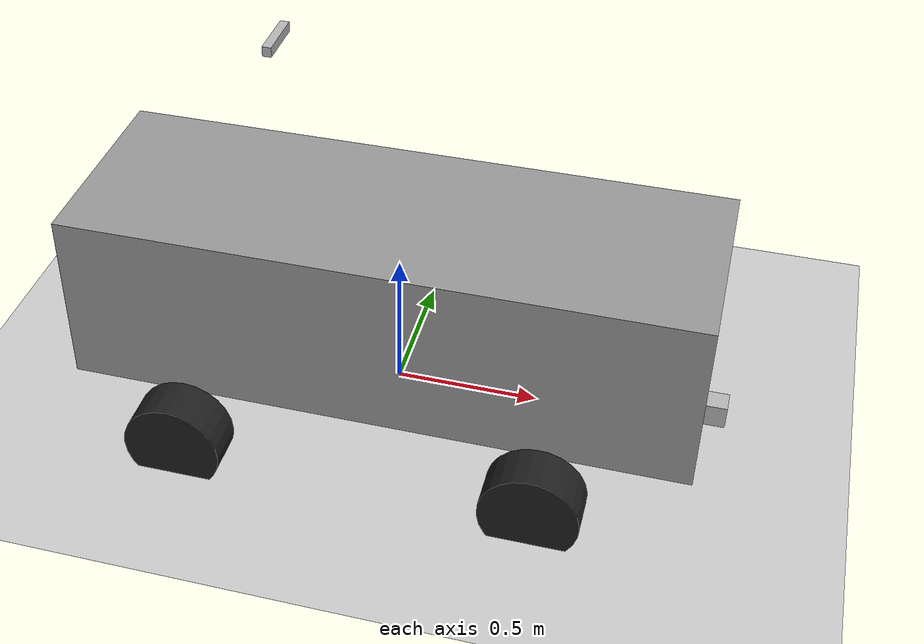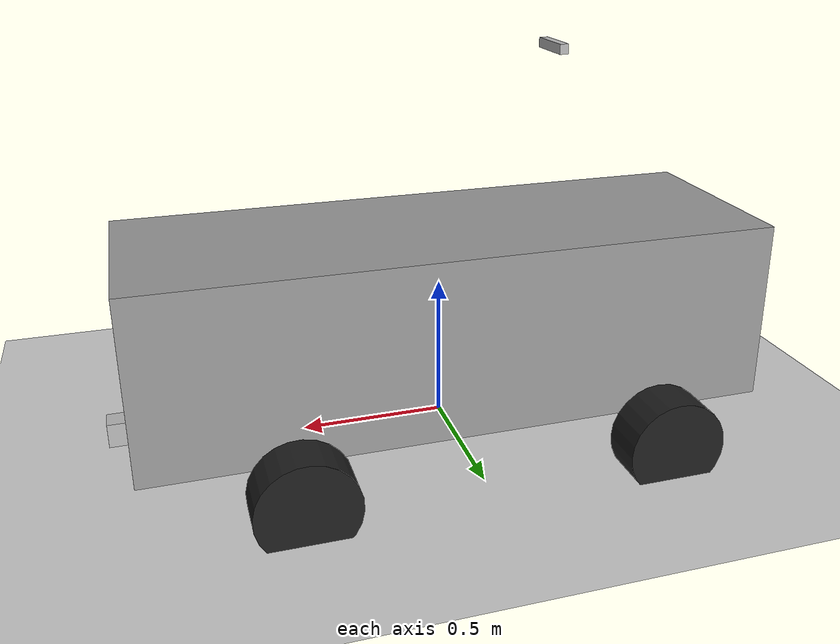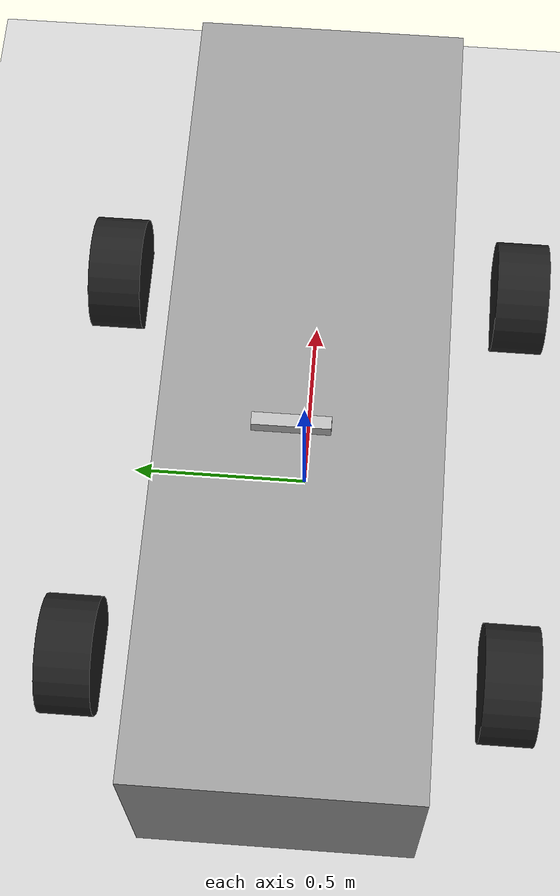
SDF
<?xml version="1.0" ?>
<sdf version="1.6">
  <world name="default">
    <!-- A global light source -->
    <include>
      <uri>model://sun</uri>
    </include>
    <!-- A ground plane -->
    <include>
      <uri>model://ground_plane</uri>
    </include>

    <!-- Specify the QEV2 model -->
    <model name="QEV2">
      <include>
        <uri>model://QEV2</uri>
	      <pose>0 0 0 0 0 0</pose>
      </include>

      <!-- Attach the plugin to this model -->
      <plugin name="qev2_drive_control" filename="/home/philly/catkin_ws/src/qut/qutms_autonomous/plugins/drive_plugin/build/libqev2_drive_plugin.so"/>
    </model>

  </world>
</sdf>

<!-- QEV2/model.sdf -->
<sdf version="1.6">
  <model name="QEV2">
    <link name="chassis">
      <pose>0 0 0.4 0 0 0</pose>
      <inertial>
        <mass>46</mass>
        <inertia>
          <ixx>3.5923125</ixx>
          <iyy>19.4891458333</iyy>
          <izz>20.0385583333</izz>
          <ixy>0</ixy>
          <ixz>0</ixz>
          <iyz>0</iyz>
        </inertia>
      </inertial>
      <self_collide>0</self_collide>
      <enable_wind>0</enable_wind>
      <kinematic>0</kinematic>
      <collision name="collision">
        <geometry>
          <box>
            <size>2.165 0.735 0.63</size>
          </box>
        </geometry>
        <surface>
          <friction>
            <ode>
              <mu>1</mu>
              <mu2>1</mu2>
              <fdir1>0 0 0</fdir1>
              <slip1>0</slip1>
              <slip2>0</slip2>
            </ode>
            <torsional>
              <coefficient>1</coefficient>
              <patch_radius>0</patch_radius>
              <surface_radius>0</surface_radius>
              <use_patch_radius>1</use_patch_radius>
              <ode>
                <slip>0</slip>
              </ode>
            </torsional>
          </friction>
          <bounce>
            <restitution_coefficient>0</restitution_coefficient>
            <threshold>1e+06</threshold>
          </bounce>
          <contact>
            <collide_without_contact>0</collide_without_contact>
            <collide_without_contact_bitmask>1</collide_without_contact_bitmask>
            <collide_bitmask>1</collide_bitmask>
            <ode>
              <soft_cfm>0</soft_cfm>
              <soft_erp>0.2</soft_erp>
              <kp>1e+13</kp>
              <kd>1</kd>
              <max_vel>0.01</max_vel>
              <min_depth>0</min_depth>
            </ode>
            <bullet>
              <split_impulse>1</split_impulse>
              <split_impulse_penetration_threshold>-0.01</split_impulse_penetration_threshold>
              <soft_cfm>0</soft_cfm>
              <soft_erp>0.2</soft_erp>
              <kp>1e+13</kp>
              <kd>1</kd>
            </bullet>
          </contact>
        </surface>
      </collision>
      <visual name="visual">
        <geometry>
          <box>
            <size>2.165 0.735 0.63</size>
          </box>
        </geometry>
        <material>
          <script>
            <uri>file://media/materials/scripts/gazebo.material</uri>
            <name>Gazebo/Grey</name>
          </script>
        </material>
        <transparency>0</transparency>
        <cast_shadows>1</cast_shadows>
      </visual>
    </link>
    <link name="wheel_front_right">
      <pose>0.6 -0.6 0.1 -1.5707963267948966 -0.08726646259971647 0</pose>
      <inertial>
        <mass>3</mass>
        <inertia>
          <ixx>0.0262499475</ixx>
          <iyy>0.0262499475</iyy>
          <izz>0.040887015</izz>
          <ixy>0</ixy>
          <ixz>0</ixz>
          <iyz>0</iyz>
        </inertia>
      </inertial>
      <self_collide>0</self_collide>
      <enable_wind>0</enable_wind>
      <kinematic>0</kinematic>
      <collision name="collision">
        <geometry>
          <cylinder>
            <radius>.1651</radius>
            <length>.1524</length>
          </cylinder>
        </geometry>
        <surface>
          <friction>
            <ode>
              <mu>1</mu>
              <mu2>1</mu2>
              <fdir1>0 0 0</fdir1>
              <slip1>0</slip1>
              <slip2>0</slip2>
            </ode>
            <torsional>
              <coefficient>1</coefficient>
              <patch_radius>0</patch_radius>
              <surface_radius>0</surface_radius>
              <use_patch_radius>1</use_patch_radius>
              <ode>
                <slip>0</slip>
              </ode>
            </torsional>
          </friction>
          <bounce>
            <restitution_coefficient>0</restitution_coefficient>
            <threshold>1e+06</threshold>
          </bounce>
          <contact>
            <collide_without_contact>0</collide_without_contact>
            <collide_without_contact_bitmask>1</collide_without_contact_bitmask>
            <collide_bitmask>1</collide_bitmask>
            <ode>
              <soft_cfm>0</soft_cfm>
              <soft_erp>0.2</soft_erp>
              <kp>1e+13</kp>
              <kd>1</kd>
              <max_vel>0.01</max_vel>
              <min_depth>0</min_depth>
            </ode>
            <bullet>
              <split_impulse>1</split_impulse>
              <split_impulse_penetration_threshold>-0.01</split_impulse_penetration_threshold>
              <soft_cfm>0</soft_cfm>
              <soft_erp>0.2</soft_erp>
              <kp>1e+13</kp>
              <kd>1</kd>
            </bullet>
          </contact>
        </surface>
      </collision>
      <visual name="visual">
        <geometry>
          <cylinder>
            <radius>.1651</radius>
            <length>.1524</length>
          </cylinder>
        </geometry>
        <material>
          <script>
            <uri>file://media/materials/scripts/gazebo.material</uri>
            <name>Gazebo/Black</name>
          </script>
        </material>
        <transparency>0</transparency>
        <cast_shadows>1</cast_shadows>
      </visual>
    </link>
    <link name="wheel_front_left">
      <pose>0.6 0.6 0.1 -1.5707963267948966 -0.08726646259971647 0</pose>
      <inertial>
        <mass>3</mass>
        <inertia>
          <ixx>0.0262499475</ixx>
          <iyy>0.0262499475</iyy>
          <izz>0.040887015</izz>
          <ixy>0</ixy>
          <ixz>0</ixz>
          <iyz>0</iyz>
        </inertia>
      </inertial>
      <collision name="collision">
        <geometry>
          <cylinder>
            <radius>.1651</radius>
            <length>.1524</length>
          </cylinder>
        </geometry>
      </collision>
      <visual name="visual">
        <geometry>
          <cylinder>
            <radius>.1651</radius>
            <length>.1524</length>
          </cylinder>
        </geometry>
        <material>
          <script>
            <uri>file://media/materials/scripts/gazebo.material</uri>
            <name>Gazebo/Black</name>
          </script>
        </material>
      </visual>
    </link>
    <link name="wheel_rear_right">
      <pose>-0.6 -0.6 0.1 -1.5707963267948966 0 0</pose>
      <inertial>
        <mass>3</mass>
        <inertia>
          <ixx>0.0262499475</ixx>
          <iyy>0.0262499475</iyy>
          <izz>0.040887015</izz>
          <ixy>0</ixy>
          <ixz>0</ixz>
          <iyz>0</iyz>
        </inertia>
      </inertial>
      <collision name="collision">
        <geometry>
          <cylinder>
            <radius>.1651</radius>
            <length>.1524</length>
          </cylinder>
        </geometry>
        <surface>
          <friction>
            <ode>
              <mu>1</mu>
              <mu2>1</mu2>
              <fdir1>0 0 0</fdir1>
              <slip1>0</slip1>
              <slip2>0</slip2>
            </ode>
            <torsional>
              <coefficient>1</coefficient>
              <patch_radius>0</patch_radius>
              <surface_radius>0</surface_radius>
              <use_patch_radius>1</use_patch_radius>
              <ode>
                <slip>0</slip>
              </ode>
            </torsional>
          </friction>
          <bounce>
            <restitution_coefficient>0</restitution_coefficient>
            <threshold>1e+06</threshold>
          </bounce>
          <contact>
            <collide_without_contact>0</collide_without_contact>
            <collide_without_contact_bitmask>1</collide_without_contact_bitmask>
            <collide_bitmask>1</collide_bitmask>
            <ode>
              <soft_cfm>0</soft_cfm>
              <soft_erp>0.2</soft_erp>
              <kp>1e+13</kp>
              <kd>1</kd>
              <max_vel>0.01</max_vel>
              <min_depth>0</min_depth>
            </ode>
            <bullet>
              <split_impulse>1</split_impulse>
              <split_impulse_penetration_threshold>-0.01</split_impulse_penetration_threshold>
              <soft_cfm>0</soft_cfm>
              <soft_erp>0.2</soft_erp>
              <kp>1e+13</kp>
              <kd>1</kd>
            </bullet>
          </contact>
        </surface>
      </collision>
      <visual name="visual">
        <geometry>
          <cylinder>
            <radius>.1651</radius>
            <length>.1524</length>
          </cylinder>
        </geometry>
        <material>
          <script>
            <uri>file://media/materials/scripts/gazebo.material</uri>
            <name>Gazebo/Black</name>
          </script>
        </material>
      </visual>
    </link>
    <link name="wheel_rear_left">
      <pose>-0.6 0.6 0.1 -1.5707963267948966 0 0</pose>
      <inertial>
        <mass>3</mass>
        <inertia>
          <ixx>0.0262499475</ixx>
          <iyy>0.0262499475</iyy>
          <izz>0.040887015</izz>
          <ixy>0</ixy>
          <ixz>0</ixz>
          <iyz>0</iyz>
        </inertia>
      </inertial>
      <collision name="collision">
        <geometry>
          <cylinder>
            <radius>.1651</radius>
            <length>.1524</length>
          </cylinder>
        </geometry>
      </collision>
      <visual name="visual">
        <geometry>
          <cylinder>
            <radius>.1651</radius>
            <length>.1524</length>
          </cylinder>
        </geometry>
        <material>
          <script>
            <uri>file://media/materials/scripts/gazebo.material</uri>
            <name>Gazebo/Black</name>
          </script>
        </material>
      </visual>
    </link>
    <link name="susp_front_right">
      <pose>0.6 -0.6 0.1 0 0 0</pose>
      <inertial>
        <mass>3</mass>
        <inertia>
          <ixx>0.0208333333333333</ixx>
          <iyy>0.0208333333333333</iyy>
          <izz>0.0208333333333333</izz>
          <ixy>0</ixy>
          <ixz>0</ixz>
          <iyz>0</iyz>
        </inertia>
      </inertial>
      <collision name="collision">
        <geometry>
          <box>
            <size>0.1 0.1 0.1</size>
          </box>
        </geometry>
      </collision>
      <visual name="visual">
        <geometry>
          <box>
            <size>0.1 0.1 0.1</size>
          </box>
        </geometry>
        <material>
          <script>
            <uri>file://media/materials/scripts/gazebo.material</uri>
            <name>Gazebo/Black</name>
          </script>
        </material>
      </visual>
    </link>
    <link name="susp_front_left">
      <pose>0.6 0.6 0.1 0 0 0</pose>
      <inertial>
        <mass>3</mass>
        <inertia>
          <ixx>0.0208333333333333</ixx>
          <iyy>0.0208333333333333</iyy>
          <izz>0.0208333333333333</izz>
          <ixy>0</ixy>
          <ixz>0</ixz>
          <iyz>0</iyz>
        </inertia>
      </inertial>
      <collision name="collision">
        <geometry>
          <box>
            <size>0.1 0.1 0.1</size>
          </box>
        </geometry>
      </collision>
      <visual name="visual">
        <geometry>
          <box>
            <size>0.1 0.1 0.1</size>
          </box>
        </geometry>
        <material>
          <script>
            <uri>file://media/materials/scripts/gazebo.material</uri>
            <name>Gazebo/Black</name>
          </script>
        </material>
      </visual>
    </link>
    <link name="susp_rear_left">
      <pose>-0.6 0.6 0.1 0 0 0</pose>
      <inertial>
        <mass>3</mass>
        <inertia>
          <ixx>0.0208333333333333</ixx>
          <iyy>0.0208333333333333</iyy>
          <izz>0.0208333333333333</izz>
          <ixy>0</ixy>
          <ixz>0</ixz>
          <iyz>0</iyz>
        </inertia>
      </inertial>
      <collision name="collision">
        <geometry>
          <box>
            <size>0.1 0.1 0.1</size>
          </box>
        </geometry>
      </collision>
      <visual name="visual">
        <geometry>
          <box>
            <size>0.1 0.1 0.1</size>
          </box>
        </geometry>
        <material>
          <script>
            <uri>file://media/materials/scripts/gazebo.material</uri>
            <name>Gazebo/Black</name>
          </script>
        </material>
      </visual>
    </link>
    <link name="susp_rear_right">
      <pose>-0.6 -0.6 0.1 0 0 0</pose>
      <inertial>
        <mass>3</mass>
        <inertia>
          <ixx>0.0208333333333333</ixx>
          <iyy>0.0208333333333333</iyy>
          <izz>0.0208333333333333</izz>
          <ixy>0</ixy>
          <ixz>0</ixz>
          <iyz>0</iyz>
        </inertia>
      </inertial>
      <collision name="collision">
        <geometry>
          <box>
            <size>0.1 0.1 0.1</size>
          </box>
        </geometry>
      </collision>
      <visual name="visual">
        <geometry>
          <box>
            <size>0.1 0.1 0.1</size>
          </box>
        </geometry>
        <material>
          <script>
            <uri>file://media/materials/scripts/gazebo.material</uri>
            <name>Gazebo/Black</name>
          </script>
        </material>
      </visual>
    </link>
    <joint name="susp_front_right_prismatic" type="prismatic">
      <parent>chassis</parent>
      <child>susp_front_right</child>
      <axis>
        <xyz>0 0 -1</xyz>
        <limit>
          <lower>-0.075</lower>
          <upper>0.075</upper>
        </limit>
        <dynamics>
          <damping>700</damping>
          <spring_stiffness>1500</spring_stiffness>
          <spring_reference>0.001</spring_reference>
        </dynamics>
      </axis>
      <physics>
        <ode>
          <implicit_spring_damper>1</implicit_spring_damper>
        </ode>
      </physics>
    </joint>
    <joint name="susp_front_left_prismatic" type="prismatic">
      <parent>chassis</parent>
      <child>susp_front_left</child>
      <axis>
        <xyz>0 0 -1</xyz>
        <limit>
          <lower>-0.075</lower>
          <upper>0.075</upper>
        </limit>
        <dynamics>
          <damping>700</damping>
          <spring_stiffness>1500</spring_stiffness>
          <spring_reference>0.001</spring_reference>
        </dynamics>
      </axis>
      <physics>
        <ode>
          <implicit_spring_damper>1</implicit_spring_damper>
        </ode>
      </physics>
    </joint>
    <joint name="susp_rear_right_prismatic" type="prismatic">
      <parent>chassis</parent>
      <child>susp_rear_right</child>
      <axis>
        <xyz>0 0 -1</xyz>
        <limit>
          <lower>-0.075</lower>
          <upper>0.075</upper>
        </limit>
        <dynamics>
          <damping>700</damping>
          <spring_stiffness>1500</spring_stiffness>
          <spring_reference>0.001</spring_reference>
        </dynamics>
      </axis>
      <physics>
        <ode>
          <implicit_spring_damper>1</implicit_spring_damper>
        </ode>
      </physics>
    </joint>
    <joint name="susp_rear_left_prismatic" type="prismatic">
      <parent>chassis</parent>
      <child>susp_rear_left</child>
      <axis>
        <xyz>0 0 -1</xyz>
        <limit>
          <lower>-0.075</lower>
          <upper>0.075</upper>
        </limit>
        <dynamics>
          <damping>700</damping>
          <spring_stiffness>1500</spring_stiffness>
          <spring_reference>0.001</spring_reference>
        </dynamics>
      </axis>
      <physics>
        <ode>
          <implicit_spring_damper>1</implicit_spring_damper>
        </ode>
      </physics>
    </joint>
    <joint name="wheel_front_right_steer_spin" type="universal">
      <parent>susp_front_right</parent>
      <child>wheel_front_right</child>
      <axis>
        <xyz>0 -1 0</xyz>
        <use_parent_model_frame>0</use_parent_model_frame>
        <limit>
          <lower>-0.6108652381980153</lower>
          <upper>0.6108652381980153</upper>
          <effort>-1</effort>
          <velocity>-1</velocity>
        </limit>
        <dynamics>
          <spring_reference>0</spring_reference>
          <spring_stiffness>0</spring_stiffness>
          <damping>0</damping>
          <friction>0</friction>
        </dynamics>
      </axis>
      <axis2>
        <xyz>0 0 1</xyz>
        <use_parent_model_frame>0</use_parent_model_frame>
        <dynamics>
          <spring_reference>0</spring_reference>
          <spring_stiffness>0</spring_stiffness>
          <damping>0</damping>
          <friction>0</friction>
        </dynamics>
        <limit>
          <lower>-1e+16</lower>
          <upper>1e+16</upper>
          <effort>-1</effort>
          <velocity>-1</velocity>
        </limit>
      </axis2>
      <physics>
        <ode>
          <limit>
            <cfm>0</cfm>
            <erp>0.2</erp>
          </limit>
          <suspension>
            <cfm>0</cfm>
            <erp>0.2</erp>
          </suspension>
        </ode>
      </physics>
    </joint>
    <joint name="wheel_front_left_steer_spin" type="universal">
      <parent>susp_front_left</parent>
      <child>wheel_front_left</child>
      <axis>
        <xyz>0 -1 0</xyz>
        <limit>
          <lower>-0.6108652381980153</lower>
          <upper>0.6108652381980153</upper>
          <effort>-1</effort>
          <velocity>-1</velocity>
        </limit>
        <dynamics>
          <spring_reference>0</spring_reference>
          <spring_stiffness>0</spring_stiffness>
          <damping>0</damping>
          <friction>0</friction>
        </dynamics>
      </axis>
      <axis2>
        <xyz>0 0 1</xyz>
        <use_parent_model_frame>0</use_parent_model_frame>
      </axis2>
      <physics>
        <ode>
          <limit>
            <cfm>0</cfm>
            <erp>0.2</erp>
          </limit>
          <suspension>
            <cfm>0</cfm>
            <erp>0.2</erp>
          </suspension>
        </ode>
      </physics>
    </joint>
    <joint name="wheel_rear_right_spin" type="revolute">
      <parent>susp_rear_right</parent>
      <child>wheel_rear_right</child>
      <axis>
        <xyz>0 0 1</xyz>
        <use_parent_model_frame>0</use_parent_model_frame>
        <limit>
          <lower>-1e+16</lower>
          <upper>1e+16</upper>
          <effort>-1</effort>
          <velocity>-1</velocity>
        </limit>
        <dynamics>
          <spring_reference>0</spring_reference>
          <spring_stiffness>0</spring_stiffness>
          <damping>0</damping>
          <friction>0</friction>
        </dynamics>
      </axis>
      <physics>
        <ode>
          <limit>
            <cfm>0</cfm>
            <erp>0.2</erp>
          </limit>
          <suspension>
            <cfm>0</cfm>
            <erp>0.2</erp>
          </suspension>
        </ode>
      </physics>
    </joint>
    <joint name="wheel_rear_left_spin" type="revolute">
      <parent>susp_rear_left</parent>
      <child>wheel_rear_left</child>
      <axis>
        <xyz>0 0 1</xyz>
        <use_parent_model_frame>0</use_parent_model_frame>
        <limit>
          <lower>-1e+16</lower>
          <upper>1e+16</upper>
          <effort>-1</effort>
          <velocity>-1</velocity>
        </limit>
        <dynamics>
          <spring_reference>0</spring_reference>
          <spring_stiffness>0</spring_stiffness>
          <damping>0</damping>
          <friction>0</friction>
        </dynamics>
      </axis>
      <physics>
        <ode>
          <limit>
            <cfm>0</cfm>
            <erp>0.2</erp>
          </limit>
          <suspension>
            <cfm>0</cfm>
            <erp>0.2</erp>
          </suspension>
        </ode>
      </physics>
    </joint>
    <!-- Add lidar to QEV2 -->
    <include>
      <uri>model://horizon_lidar</uri>
      <pose>1.1 0 0.1 0 0 0</pose>
    </include>
    <joint name="horizon_lidar_joint" type="fixed">
      <child>horizon_lidar::horizon_lidar_base</child>
      <parent>chassis</parent>
    </joint>
    <!-- Add (stereo) camera to QEV2 -->
    <include>
      <uri>model://zed_camera</uri>
      <pose>-0.4 0 1.3 0 0 0</pose>
    </include>
    <joint name="zed_camera_joint" type="fixed">
      <child>zed_camera::zed_camera_base</child>
      <parent>chassis</parent>
    </joint>
  </model>
</sdf>

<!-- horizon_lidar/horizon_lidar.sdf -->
<sdf version="1.6">
  <model name="horizon_lidar">
    <link name="horizon_lidar_base">
      <sensor type="ray" name="sensor">
        <pose>0.057 0 0.020 0 0 0</pose>
        <!--Enable visualization here-->
        <always_on>1</always_on>
        <visualize>true</visualize>
        <update_rate>40</update_rate>
        <ray>
          <!--Only need horizontal beams-->
          <scan>
            <horizontal>
              <samples>40</samples>
              <resolution>1</resolution>
              <!--Grab angular resolution in radians-->
              <min_angle>-0.7129669994</min_angle>
              <max_angle>0.7129669994</max_angle>
            </horizontal>
            <vertical>
              <samples>40</samples>
              <resolution>1</resolution>
              <!--Grab angular resolution in radians-->
              <min_angle>-0.2190388211</min_angle>
              <max_angle>0.2190388211</max_angle>
            </vertical>
          </scan>
          <range>
            <min>1</min>
            <max>20</max>
            <resolution>0.01</resolution>
          </range>
        </ray>
      </sensor>
      <pose>0 0 0 0 0 0</pose>
      <inertial>
        <mass>1.18</mass>
        <inertia>
          <ixx>0.00127685833</ixx>
          <iyy>0.00188347666</iyy>
          <izz>0.00199429833</izz>
          <ixy>0</ixy>
          <ixz>0</ixz>
          <iyz>0</iyz>
        </inertia>
      </inertial>
      <collision name="collision">
        <geometry>
          <box>
            <size>0.115 0.077 0.084</size>
          </box>
        </geometry>
      </collision>
      <visual name="visual">
        <geometry>
          <box>
            <size>0.115 0.077 0.084</size>
          </box>
        </geometry>
      </visual>
    </link>
  </model>
</sdf>

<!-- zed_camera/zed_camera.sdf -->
<sdf version="1.6">
  <model name="zed_camera">
    <!-- This is a stereo camera, so we define two cameras individually -->
    <link name="zed_camera_base">
      <sensor type="camera" name="cam_left">
        <pose>0.06 0 0 0 0 1.5707</pose>
        <always_on>1</always_on>
        <visualize>true</visualize>
        <update_rate>30</update_rate>
        <camera>
          <!-- Grab horizontal FOV from datasheet -->
          <horizontal_fov>1.5707963268</horizontal_fov>
          <image>
            <!-- Image resolution at 30 FPS is 3840x1080 -->
            <width>3840</width>
            <height>1080</height>
          </image>
          <clip>
            <near>0.5</near>
            <far>100</far>
          </clip>
        </camera>
      </sensor>
      <sensor type="camera" name="cam_right">
        <pose>-0.06 0 0 0 0 1.5707</pose>
        <always_on>1</always_on>
        <visualize>true</visualize>
        <update_rate>30</update_rate>
        <camera>
          <!-- Grab horizontal FOV from datasheet -->
          <horizontal_fov>1.5707963268</horizontal_fov>
          <image>
            <!-- Image resolution at 30 FPS is 3840x1080 -->
            <width>3840</width>
            <height>1080</height>
          </image>
          <clip>
            <near>0.5</near>
            <far>100</far>
          </clip>
        </camera>
      </sensor>
      <pose>0 0 0 0 0 -1.5707</pose>
      <inertial>
        <mass>0.135</mass>
        <inertia>
          <ixx>0.00022376</ixx>
          <iyy>0.003568</iyy>
          <izz>0.0035466</izz>
          <ixy>0</ixy>
          <ixz>0</ixz>
          <iyz>0</iyz>
        </inertia>
      </inertial>
      <collision name="collision">
        <geometry>
          <box>
            <size>0.175 0.03 0.033</size>
          </box>
        </geometry>
      </collision>
      <visual name="visual">
        <geometry>
          <box>
            <size>0.175 0.03 0.033</size>
          </box>
        </geometry>
      </visual>
    </link>
  </model>
</sdf>
